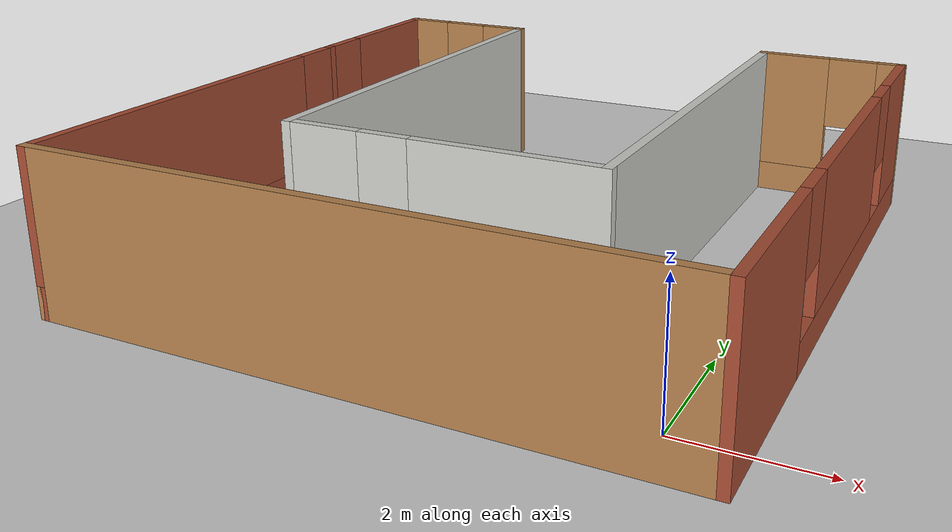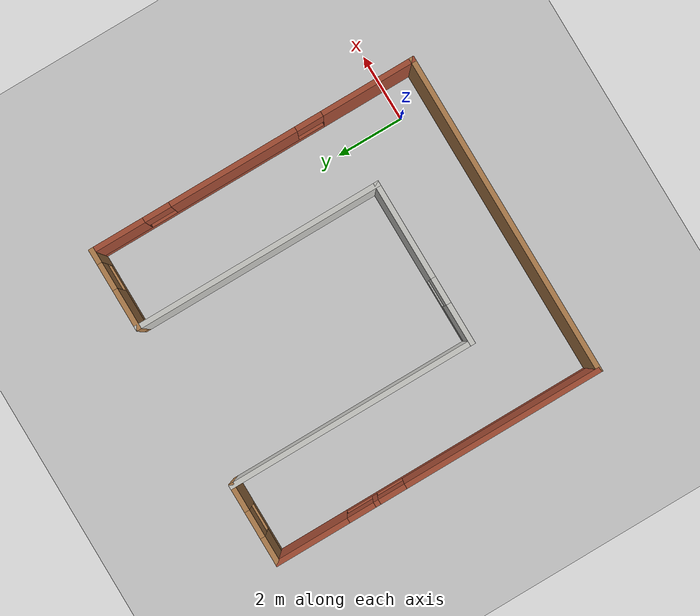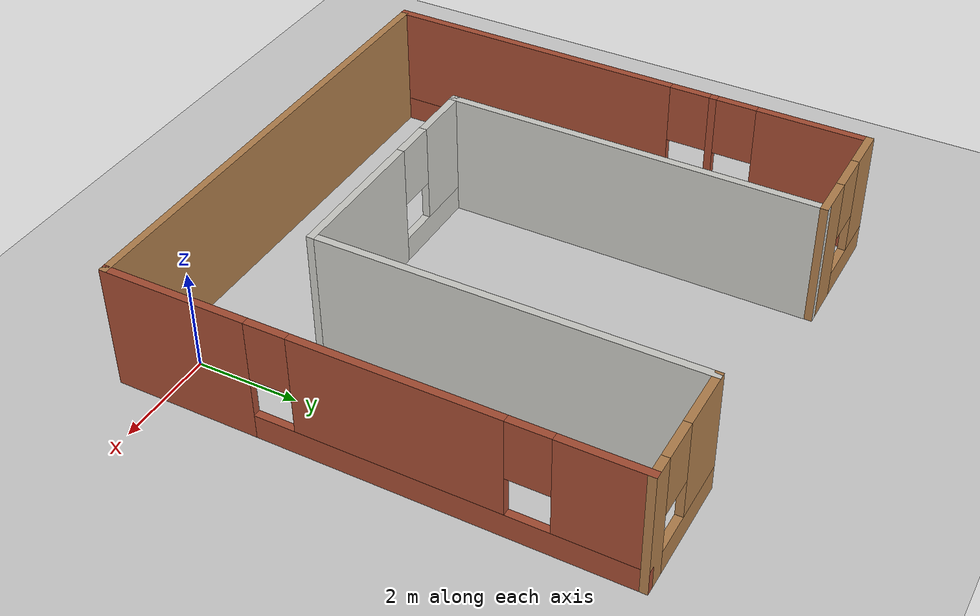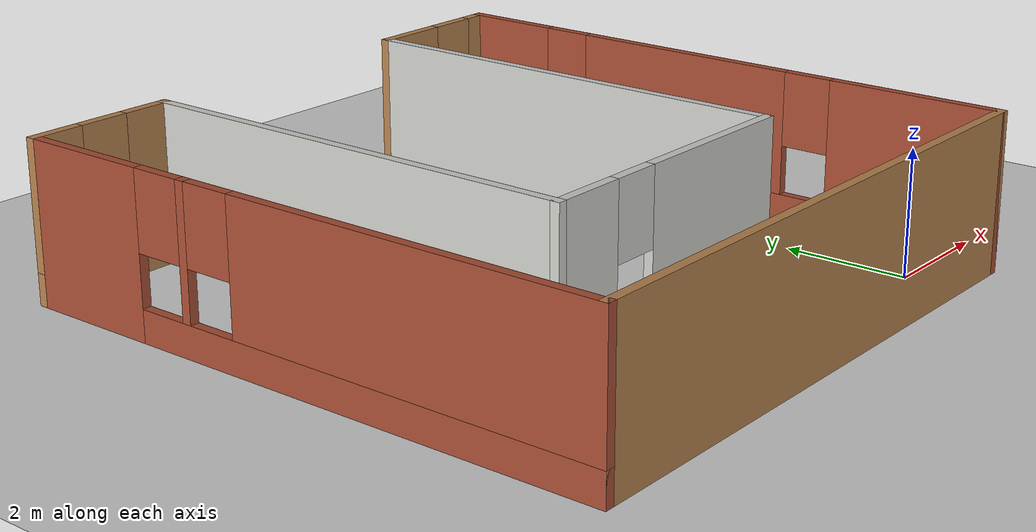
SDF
<sdf version="1.6">
 <world name="default">
  <light name="sun" type="directional">
   <pose>0 0 10 0 -0 0</pose>
   <diffuse>0.8 0.8 0.8 1</diffuse>
   <specular>0.2 0.2 0.2 1</specular>
   <attenuation>
    <range>1000</range>
    <constant>0.9</constant>
    <linear>0.01</linear>
    <quadratic>0.001</quadratic>
   </attenuation>
   <direction>-0.5 0.1 -0.9</direction>
  </light>
  <model name="ground_plane">
   <static>1</static>
   <link name="link">
    <collision name="collision">
     <geometry><plane><normal>0 0 1</normal><size>100 100</size></plane></geometry>
     <surface>
      <contact><collide_bitmask>65535</collide_bitmask></contact>
      <friction><ode><mu>100</mu><mu2>50</mu2></ode></friction>
     </surface>
    </collision>
    <visual name="visual">
     <cast_shadows>0</cast_shadows>
     <geometry><plane><normal>0 0 1</normal><size>100 100</size></plane></geometry>
     <material>
      <script><uri>file://media/materials/scripts/gazebo.material</uri><name>Gazebo/Grey</name></script>
     </material>
    </visual>
   </link>
  </model>
  <gravity>0 0 -9.8</gravity>
  <magnetic_field>6e-06 2.3e-05 -4.2e-05</magnetic_field>
  <atmosphere type="adiabatic"/>
  <physics name="default_physics" default="0" type="ode">
   <max_step_size>0.001</max_step_size>
   <real_time_factor>1</real_time_factor>
   <real_time_update_rate>1000</real_time_update_rate>
  </physics>
  <scene><ambient>0.4 0.4 0.4 1</ambient><background>0.7 0.7 0.7 1</background><shadows>1</shadows></scene>
  <spherical_coordinates>
   <surface_model>EARTH_WGS84</surface_model>
   <latitude_deg>0</latitude_deg>
   <longitude_deg>0</longitude_deg>
   <elevation>0</elevation>
   <heading_deg>0</heading_deg>
  </spherical_coordinates>
  <model name="MyWorld">
   <pose>-3.80456 4.06816 0 0 -0 0</pose>
   <link name="Wall_2">
    <pose>4.775 0 0 0 -0 1.5708</pose>
    <visual name="Wall_2_Visual_0">
     <pose>-3.56649 0 1.25 0 -0 0</pose>
     <geometry><box><size>2.86702 0.15 2.5</size></box></geometry>
     <material>
      <script><uri>file://media/materials/scripts/gazebo.material</uri><name>Gazebo/Bricks</name></script>
      <ambient>1 1 1 1</ambient>
     </material>
     <meta><layer>0</layer></meta>
    </visual>
    <collision name="Wall_2_Collision_0">
     <geometry><box><size>2.86702 0.15 2.5</size></box></geometry>
     <pose>-3.56649 0 1.25 0 -0 0</pose>
    </collision>
    <visual name="Wall_2_Visual_1">
     <pose>1.43351 0 0.25 0 -0 0</pose>
     <geometry><box><size>7.13298 0.15 0.5</size></box></geometry>
     <material>
      <script><uri>file://media/materials/scripts/gazebo.material</uri><name>Gazebo/Bricks</name></script>
      <ambient>1 1 1 1</ambient>
     </material>
     <meta><layer>0</layer></meta>
    </visual>
    <collision name="Wall_2_Collision_1">
     <geometry><box><size>7.13298 0.15 0.5</size></box></geometry>
     <pose>1.43351 0 0.25 0 -0 0</pose>
    </collision>
    <visual name="Wall_2_Visual_2">
     <pose>0.603215 0 1.5 0 -0 0</pose>
     <geometry><box><size>3.87238 0.15 2</size></box></geometry>
     <material>
      <script><uri>file://media/materials/scripts/gazebo.material</uri><name>Gazebo/Bricks</name></script>
      <ambient>1 1 1 1</ambient>
     </material>
     <meta><layer>0</layer></meta>
    </visual>
    <collision name="Wall_2_Collision_2">
     <geometry><box><size>3.87238 0.15 2</size></box></geometry>
     <pose>0.603215 0 1.5 0 -0 0</pose>
    </collision>
    <visual name="Wall_2_Visual_3">
     <pose>4.1697 0 1.5 0 -0 0</pose>
     <geometry><box><size>1.66059 0.15 2</size></box></geometry>
     <material>
      <script><uri>file://media/materials/scripts/gazebo.material</uri><name>Gazebo/Bricks</name></script>
      <ambient>1 1 1 1</ambient>
     </material>
     <meta><layer>0</layer></meta>
    </visual>
    <collision name="Wall_2_Collision_3">
     <geometry><box><size>1.66059 0.15 2</size></box></geometry>
     <pose>4.1697 0 1.5 0 -0 0</pose>
    </collision>
    <visual name="Wall_2_Visual_4">
     <pose>-1.73298 0 1.9 0 -0 0</pose>
     <geometry><box><size>0.8 0.15 1.2</size></box></geometry>
     <material>
      <script><uri>file://media/materials/scripts/gazebo.material</uri><name>Gazebo/Bricks</name></script>
      <ambient>1 1 1 1</ambient>
     </material>
     <meta><layer>0</layer></meta>
    </visual>
    <collision name="Wall_2_Collision_4">
     <geometry><box><size>0.8 0.15 1.2</size></box></geometry>
     <pose>-1.73298 0 1.9 0 -0 0</pose>
    </collision>
    <visual name="Wall_2_Visual_5">
     <pose>2.93941 0 1.9 0 -0 0</pose>
     <geometry><box><size>0.8 0.15 1.2</size></box></geometry>
     <material>
      <script><uri>file://media/materials/scripts/gazebo.material</uri><name>Gazebo/Bricks</name></script>
      <ambient>1 1 1 1</ambient>
     </material>
     <meta><layer>0</layer></meta>
    </visual>
    <collision name="Wall_2_Collision_5">
     <geometry><box><size>0.8 0.15 1.2</size></box></geometry>
     <pose>2.93941 0 1.9 0 -0 0</pose>
    </collision>
   </link>
   <link name="Wall_3">
    <pose>3.6 4.925 0 0 -0 3.14159</pose>
    <visual name="Wall_3_Visual_0">
     <pose>-1.01928 0 1.25 0 -0 0</pose>
     <geometry><box><size>0.461441 0.15 2.5</size></box></geometry>
     <material>
      <script><uri>file://media/materials/scripts/gazebo.material</uri><name>Gazebo/Wood</name></script>
      <ambient>1 1 1 1</ambient>
     </material>
     <meta><layer>0</layer></meta>
    </visual>
    <collision name="Wall_3_Collision_0">
     <geometry><box><size>0.461441 0.15 2.5</size></box></geometry>
     <pose>-1.01928 0 1.25 0 -0 0</pose>
    </collision>
    <visual name="Wall_3_Visual_1">
     <pose>0.23072 0 0.25 0 -0 0</pose>
     <geometry><box><size>2.03856 0.15 0.5</size></box></geometry>
     <material>
      <script><uri>file://media/materials/scripts/gazebo.material</uri><name>Gazebo/Wood</name></script>
      <ambient>1 1 1 1</ambient>
     </material>
     <meta><layer>0</layer></meta>
    </visual>
    <collision name="Wall_3_Collision_1">
     <geometry><box><size>2.03856 0.15 0.5</size></box></geometry>
     <pose>0.23072 0 0.25 0 -0 0</pose>
    </collision>
    <visual name="Wall_3_Visual_2">
     <pose>0.63072 0 1.5 0 -0 0</pose>
     <geometry><box><size>1.23856 0.15 2</size></box></geometry>
     <material>
      <script><uri>file://media/materials/scripts/gazebo.material</uri><name>Gazebo/Wood</name></script>
      <ambient>1 1 1 1</ambient>
     </material>
     <meta><layer>0</layer></meta>
    </visual>
    <collision name="Wall_3_Collision_2">
     <geometry><box><size>1.23856 0.15 2</size></box></geometry>
     <pose>0.63072 0 1.5 0 -0 0</pose>
    </collision>
    <visual name="Wall_3_Visual_3">
     <pose>-0.388559 0 1.9 0 -0 0</pose>
     <geometry><box><size>0.8 0.15 1.2</size></box></geometry>
     <material>
      <script><uri>file://media/materials/scripts/gazebo.material</uri><name>Gazebo/Wood</name></script>
      <ambient>1 1 1 1</ambient>
     </material>
     <meta><layer>0</layer></meta>
    </visual>
    <collision name="Wall_3_Collision_3">
     <geometry><box><size>0.8 0.15 1.2</size></box></geometry>
     <pose>-0.388559 0 1.9 0 -0 0</pose>
    </collision>
   </link>
   <link name="Wall_4">
    <collision name="Wall_4_Collision">
     <geometry><box><size>7.5 0.15 2.5</size></box></geometry>
     <pose>0 0 1.25 0 -0 0</pose>
    </collision>
    <visual name="Wall_4_Visual">
     <pose>0 0 1.25 0 -0 0</pose>
     <geometry><box><size>7.5 0.15 2.5</size></box></geometry>
     <material>
      <script><uri>file://media/materials/scripts/gazebo.material</uri><name>Gazebo/CeilingTiled</name></script>
      <ambient>1 1 1 1</ambient>
     </material>
     <meta><layer>0</layer></meta>
    </visual>
    <pose>2.425 1.25 0 0 0 -1.5708</pose>
   </link>
   <link name="Wall_5">
    <pose>0 -2.425 0 0 -0 3.14159</pose>
    <visual name="Wall_5_Visual_0">
     <pose>-1.02713 0 1.25 0 -0 0</pose>
     <geometry><box><size>2.94574 0.15 2.5</size></box></geometry>
     <material>
      <script><uri>file://media/materials/scripts/gazebo.material</uri><name>Gazebo/CeilingTiled</name></script>
      <ambient>1 1 1 1</ambient>
     </material>
     <meta><layer>0</layer></meta>
    </visual>
    <collision name="Wall_5_Collision_0">
     <geometry><box><size>2.94574 0.15 2.5</size></box></geometry>
     <pose>-1.02713 0 1.25 0 -0 0</pose>
    </collision>
    <visual name="Wall_5_Visual_1">
     <pose>1.47287 0 0.25 0 -0 0</pose>
     <geometry><box><size>2.05426 0.15 0.5</size></box></geometry>
     <material>
      <script><uri>file://media/materials/scripts/gazebo.material</uri><name>Gazebo/CeilingTiled</name></script>
      <ambient>1 1 1 1</ambient>
     </material>
     <meta><layer>0</layer></meta>
    </visual>
    <collision name="Wall_5_Collision_1">
     <geometry><box><size>2.05426 0.15 0.5</size></box></geometry>
     <pose>1.47287 0 0.25 0 -0 0</pose>
    </collision>
    <visual name="Wall_5_Visual_2">
     <pose>1.87287 0 1.5 0 -0 0</pose>
     <geometry><box><size>1.25426 0.15 2</size></box></geometry>
     <material>
      <script><uri>file://media/materials/scripts/gazebo.material</uri><name>Gazebo/CeilingTiled</name></script>
      <ambient>1 1 1 1</ambient>
     </material>
     <meta><layer>0</layer></meta>
    </visual>
    <collision name="Wall_5_Collision_2">
     <geometry><box><size>1.25426 0.15 2</size></box></geometry>
     <pose>1.87287 0 1.5 0 -0 0</pose>
    </collision>
    <visual name="Wall_5_Visual_3">
     <pose>0.845738 0 1.9 0 -0 0</pose>
     <geometry><box><size>0.8 0.15 1.2</size></box></geometry>
     <material>
      <script><uri>file://media/materials/scripts/gazebo.material</uri><name>Gazebo/CeilingTiled</name></script>
      <ambient>1 1 1 1</ambient>
     </material>
     <meta><layer>0</layer></meta>
    </visual>
    <collision name="Wall_5_Collision_3">
     <geometry><box><size>0.8 0.15 1.2</size></box></geometry>
     <pose>0.845738 0 1.9 0 -0 0</pose>
    </collision>
   </link>
   <link name="Wall_6">
    <collision name="Wall_6_Collision">
     <geometry><box><size>7.5 0.15 2.5</size></box></geometry>
     <pose>0 0 1.25 0 -0 0</pose>
    </collision>
    <visual name="Wall_6_Visual">
     <pose>0 0 1.25 0 -0 0</pose>
     <geometry><box><size>7.5 0.15 2.5</size></box></geometry>
     <material>
      <script><uri>file://media/materials/scripts/gazebo.material</uri><name>Gazebo/CeilingTiled</name></script>
      <ambient>1 1 1 1</ambient>
     </material>
     <meta><layer>0</layer></meta>
    </visual>
    <pose>-2.425 1.25 0 0 -0 1.5708</pose>
   </link>
   <link name="Wall_7">
    <pose>-3.6 4.925 0 0 -0 3.14159</pose>
    <visual name="Wall_7_Visual_0">
     <pose>-0.82586 0 1.25 0 -0 0</pose>
     <geometry><box><size>0.84828 0.15 2.5</size></box></geometry>
     <material>
      <script><uri>file://media/materials/scripts/gazebo.material</uri><name>Gazebo/Wood</name></script>
      <ambient>1 1 1 1</ambient>
     </material>
     <meta><layer>0</layer></meta>
    </visual>
    <collision name="Wall_7_Collision_0">
     <geometry><box><size>0.84828 0.15 2.5</size></box></geometry>
     <pose>-0.82586 0 1.25 0 -0 0</pose>
    </collision>
    <visual name="Wall_7_Visual_1">
     <pose>0.42414 0 0.25 0 -0 0</pose>
     <geometry><box><size>1.65172 0.15 0.5</size></box></geometry>
     <material>
      <script><uri>file://media/materials/scripts/gazebo.material</uri><name>Gazebo/Wood</name></script>
      <ambient>1 1 1 1</ambient>
     </material>
     <meta><layer>0</layer></meta>
    </visual>
    <collision name="Wall_7_Collision_1">
     <geometry><box><size>1.65172 0.15 0.5</size></box></geometry>
     <pose>0.42414 0 0.25 0 -0 0</pose>
    </collision>
    <visual name="Wall_7_Visual_2">
     <pose>0.82414 0 1.5 0 -0 0</pose>
     <geometry><box><size>0.85172 0.15 2</size></box></geometry>
     <material>
      <script><uri>file://media/materials/scripts/gazebo.material</uri><name>Gazebo/Wood</name></script>
      <ambient>1 1 1 1</ambient>
     </material>
     <meta><layer>0</layer></meta>
    </visual>
    <collision name="Wall_7_Collision_2">
     <geometry><box><size>0.85172 0.15 2</size></box></geometry>
     <pose>0.82414 0 1.5 0 -0 0</pose>
    </collision>
    <visual name="Wall_7_Visual_3">
     <pose>-0.00172 0 1.9 0 -0 0</pose>
     <geometry><box><size>0.8 0.15 1.2</size></box></geometry>
     <material>
      <script><uri>file://media/materials/scripts/gazebo.material</uri><name>Gazebo/Wood</name></script>
      <ambient>1 1 1 1</ambient>
     </material>
     <meta><layer>0</layer></meta>
    </visual>
    <collision name="Wall_7_Collision_3">
     <geometry><box><size>0.8 0.15 1.2</size></box></geometry>
     <pose>-0.00172 0 1.9 0 -0 0</pose>
    </collision>
   </link>
   <link name="Wall_8">
    <pose>-4.775 0 0 0 0 -1.5708</pose>
    <visual name="Wall_8_Visual_0">
     <pose>-3.88057 0 1.25 0 -0 0</pose>
     <geometry><box><size>2.23886 0.15 2.5</size></box></geometry>
     <material>
      <script><uri>file://media/materials/scripts/gazebo.material</uri><name>Gazebo/Bricks</name></script>
      <ambient>1 1 1 1</ambient>
     </material>
     <meta><layer>0</layer></meta>
    </visual>
    <collision name="Wall_8_Collision_0">
     <geometry><box><size>2.23886 0.15 2.5</size></box></geometry>
     <pose>-3.88057 0 1.25 0 -0 0</pose>
    </collision>
    <visual name="Wall_8_Visual_1">
     <pose>1.11943 0 0.25 0 -0 0</pose>
     <geometry><box><size>7.76114 0.15 0.5</size></box></geometry>
     <material>
      <script><uri>file://media/materials/scripts/gazebo.material</uri><name>Gazebo/Bricks</name></script>
      <ambient>1 1 1 1</ambient>
     </material>
     <meta><layer>0</layer></meta>
    </visual>
    <collision name="Wall_8_Collision_1">
     <geometry><box><size>7.76114 0.15 0.5</size></box></geometry>
     <pose>1.11943 0 0.25 0 -0 0</pose>
    </collision>
    <visual name="Wall_8_Visual_2">
     <pose>-1.88696 0 1.5 0 -0 0</pose>
     <geometry><box><size>0.148355 0.15 2</size></box></geometry>
     <material>
      <script><uri>file://media/materials/scripts/gazebo.material</uri><name>Gazebo/Bricks</name></script>
      <ambient>1 1 1 1</ambient>
     </material>
     <meta><layer>0</layer></meta>
    </visual>
    <collision name="Wall_8_Collision_2">
     <geometry><box><size>0.148355 0.15 2</size></box></geometry>
     <pose>-1.88696 0 1.5 0 -0 0</pose>
    </collision>
    <visual name="Wall_8_Visual_3">
     <pose>1.99361 0 1.5 0 -0 0</pose>
     <geometry><box><size>6.01279 0.15 2</size></box></geometry>
     <material>
      <script><uri>file://media/materials/scripts/gazebo.material</uri><name>Gazebo/Bricks</name></script>
      <ambient>1 1 1 1</ambient>
     </material>
     <meta><layer>0</layer></meta>
    </visual>
    <collision name="Wall_8_Collision_3">
     <geometry><box><size>6.01279 0.15 2</size></box></geometry>
     <pose>1.99361 0 1.5 0 -0 0</pose>
    </collision>
    <visual name="Wall_8_Visual_4">
     <pose>-2.36114 0 1.9 0 -0 0</pose>
     <geometry><box><size>0.8 0.15 1.2</size></box></geometry>
     <material>
      <script><uri>file://media/materials/scripts/gazebo.material</uri><name>Gazebo/Bricks</name></script>
      <ambient>1 1 1 1</ambient>
     </material>
     <meta><layer>0</layer></meta>
    </visual>
    <collision name="Wall_8_Collision_4">
     <geometry><box><size>0.8 0.15 1.2</size></box></geometry>
     <pose>-2.36114 0 1.9 0 -0 0</pose>
    </collision>
    <visual name="Wall_8_Visual_5">
     <pose>-1.41279 0 1.9 0 -0 0</pose>
     <geometry><box><size>0.8 0.15 1.2</size></box></geometry>
     <material>
      <script><uri>file://media/materials/scripts/gazebo.material</uri><name>Gazebo/Bricks</name></script>
      <ambient>1 1 1 1</ambient>
     </material>
     <meta><layer>0</layer></meta>
    </visual>
    <collision name="Wall_8_Collision_5">
     <geometry><box><size>0.8 0.15 1.2</size></box></geometry>
     <pose>-1.41279 0 1.9 0 -0 0</pose>
    </collision>
   </link>
   <link name="Wall_9">
    <collision name="Wall_9_Collision">
     <geometry><box><size>9.7 0.15 2.5</size></box></geometry>
     <pose>0 0 1.25 0 -0 0</pose>
    </collision>
    <visual name="Wall_9_Visual">
     <pose>0 0 1.25 0 -0 0</pose>
     <geometry><box><size>9.7 0.15 2.5</size></box></geometry>
     <material>
      <script><uri>file://media/materials/scripts/gazebo.material</uri><name>Gazebo/Wood</name></script>
      <ambient>1 1 1 1</ambient>
     </material>
     <meta><layer>0</layer></meta>
    </visual>
    <pose>0 -4.925 0 0 -0 0</pose>
   </link>
   <static>1</static>
  </model>
 </world>
</sdf>
